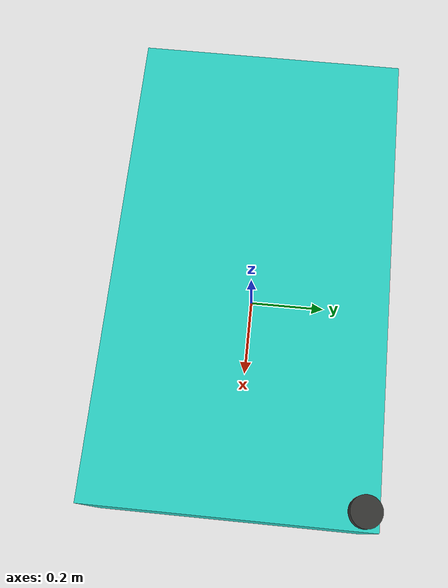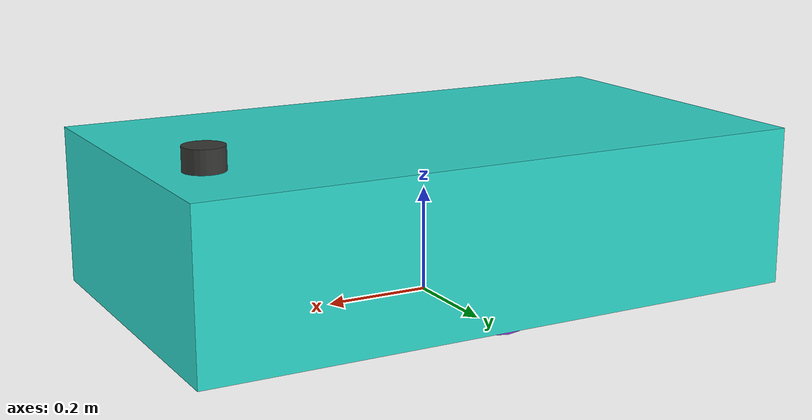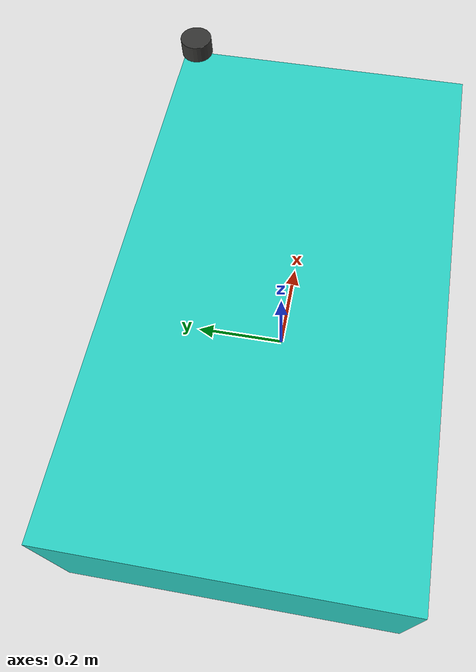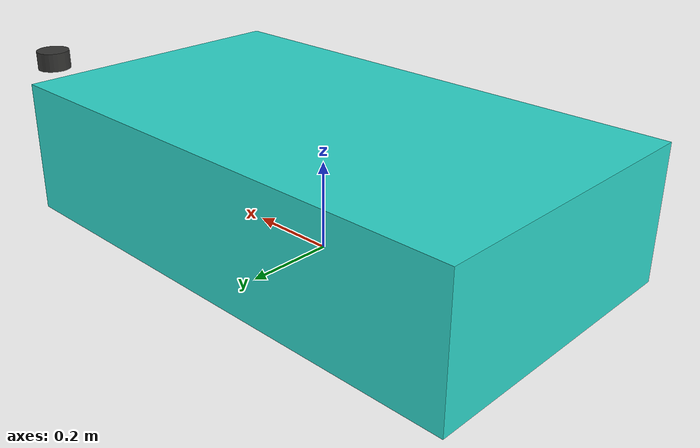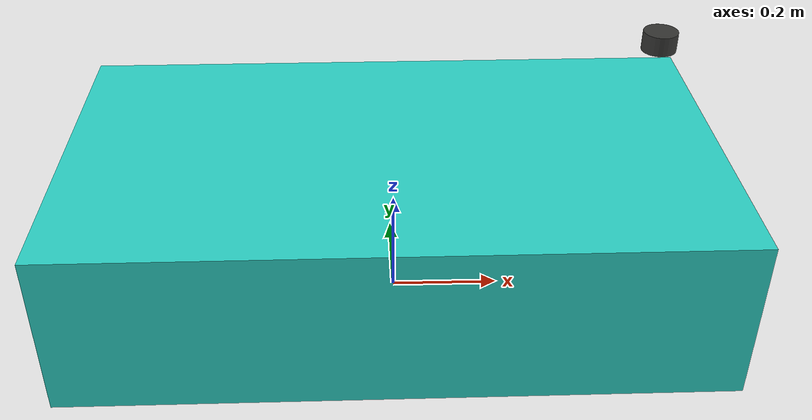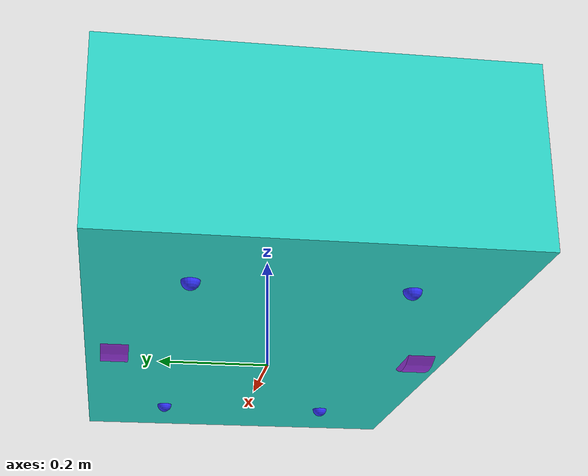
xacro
<?xml version="1.0"?>
<robot xmlns:xacro="http://www.ros.org/wiki/xacro" >

    <xacro:include filename="inertial_macros.xacro"/>

    <material name="white">
        <color rgba="1 1 1 1"/>
    </material>

    <material name="orange">
        <color rgba="1 0.3 0.1 1"/>
    </material>

    <material name="blue">
        <color rgba="0.2 0.2 1 1"/>
    </material>

    <material name="black">
        <color rgba="0 0 0 1"/>
    </material>

    <material name="red">
        <color rgba="1 0 0 1"/>
    </material>

    <material name="green">
        <color rgba="0 1 0 1"/>
    </material>

    <material name="vibrantorange">
        <color rgba="1.0 0.5 0 1"/>
    </material>

    <material name="xanhlo">
        <color rgba="0.18 0.85 0.8 1"/>
    </material>

    <material name="xanhdaquang">
        <color rgba="0.4 0.91 0.22 1"/>
    </material>

    <material name="tim">
        <color rgba="0.62 0.22 0.9 1"/>
    </material>

    <!-- BASE FOOTPRINT -->

    <link name="base_footprint">

    </link>

    <!-- BASE LINK -->

    <joint name="base_joint" type="fixed">
        <parent link="base_footprint"/>
        <child link="base_link"/>
        <origin xyz="0 0 0.09" rpy="0 0 0"/>
    </joint>

    <link name="base_link">
        <visual>
            <origin xyz="0 0 0.075"/>
            <geometry>
                <box size="1.170 0.665 0.3"/>
            </geometry>
            <material name="xanhlo"/>
        </visual>
        <collision>
            <origin xyz="0 0 0.075"/>
            <geometry>
                <box size="1.170 0.665 0.3"/>
            </geometry>
        </collision>

        <xacro:inertial_box mass="200" x="1.0" y="0.6" z="0.1">
            <origin xyz="0 0 0" rpy="0 0 0"/>
        </xacro:inertial_box>
    </link>

    <gazebo reference="base_link">
        <material>Gazebo/Green</material>
    </gazebo>

    <!-- LEFT WHEEL LINK -->

    <joint name="left_wheel_joint" type="continuous">
        <parent link="base_link"/>
        <child link="left_wheel"/>
        <origin xyz="0 0.28 0" rpy="-${pi/2} 0 0"/>
        <axis xyz="0 0 1"/>
    </joint>

    <link name="left_wheel">
        <visual>
            <origin xyz="0 0 0"/>
            <geometry>
                <cylinder radius="0.09" length="0.05"/>
            </geometry>
            <material name="tim"/>
        </visual>
        <collision>
            <origin xyz="0 0 0"/>
            <geometry>
                <cylinder radius="0.09" length="0.05"/>
            </geometry>
        </collision>

        <xacro:inertial_cylinder mass = "3" length="0.05" radius="0.09">
            <origin xyz="0 0 0" rpy="0 0 0"/>
        </xacro:inertial_cylinder>
    </link>

    <gazebo reference="left_wheel">
        <material>Gazebo/Purple</material>
    </gazebo>

    <!-- RIGHT WHEEL LINK -->

    <joint name="right_wheel_joint" type="continuous">
        <parent link="base_link"/>
        <child link="right_wheel"/>
        <origin xyz="0 -0.28 0" rpy="${pi/2} 0 0"/>
        <axis xyz="0 0 -1"/>
    </joint>

    <link name="right_wheel">
        <visual>
            <origin xyz="0 0 0"/>
            <geometry>
                <cylinder radius="0.09" length="0.05"/>
            </geometry>
            <material name="tim"/>
        </visual>
        <collision>
            <origin xyz="0 0 0"/>
            <geometry>
                <cylinder radius="0.09" length="0.05"/>
            </geometry>
        </collision>

        <xacro:inertial_cylinder mass = "3" length="0.05" radius="0.09">
            <origin xyz="0 0 0" rpy="0 0 0"/>
        </xacro:inertial_cylinder>
    </link>

    <gazebo reference="right_wheel">
        <material>Gazebo/Purple</material>
    </gazebo>

    <!-- CASTER WHEEL RIGHT BEHIND LINK -->

    <joint name="caster_wheel_right_behind_joint" type="fixed">
        <parent link="base_link"/>
        <child link="caster_wheel_right_behind"/>
        <origin xyz="-0.4 -0.17 -0.075" rpy="0 0 0"/>
    </joint>

    <link name="caster_wheel_right_behind">
        <visual>
            <origin xyz="0 0 0"/>
            <geometry>
                <sphere radius="0.015"/>
            </geometry>
            <material name="blue"/>
        </visual>
        <collision>
            <origin xyz="0 0 0"/>
            <geometry>
                <sphere radius="0.015"/>
            </geometry>
        </collision>

        <xacro:inertial_sphere mass="0.5" radius="0.015">
            <origin xyz="0 0 0" rpy="0 0 0"/>
        </xacro:inertial_sphere>
    </link>

    <gazebo reference="caster_wheel_right_behind">
        <material>Gazebo/Blue</material>
        <mu1 value="0.001"/>
        <mu2 value="0.001"/>
    </gazebo>

    <!-- CASTER WHEEL LEFT BEHIND LINK -->

    <joint name="caster_wheel_left_behind_joint" type="fixed">
        <parent link="base_link"/>
        <child link="caster_wheel_left_behind"/>
        <origin xyz="-0.4 0.17 -0.075" rpy="0 0 0"/>
    </joint>

    <link name="caster_wheel_left_behind">
        <visual>
            <origin xyz="0 0 0"/>
            <geometry>
                <sphere radius="0.015"/>
            </geometry>
            <material name="blue"/>
        </visual>
        <collision>
            <origin xyz="0 0 0"/>
            <geometry>
                <sphere radius="0.015"/>
            </geometry>
        </collision>

        <xacro:inertial_sphere mass="0.5" radius="0.015">
            <origin xyz="0 0 0" rpy="0 0 0"/>
        </xacro:inertial_sphere>
    </link>

    <gazebo reference="caster_wheel_left_behind">
        <material>Gazebo/Blue</material>
        <mu1 value="0.001"/>
        <mu2 value="0.001"/>
    </gazebo>

    <!-- CASTER WHEEL RIGHT FRONT LINK -->

    <joint name="caster_wheel_right_front_joint" type="fixed">
        <parent link="base_link"/>
        <child link="caster_wheel_right_front"/>
        <origin xyz="0.4 0.17 -0.075" rpy="0 0 0"/>
    </joint>

    <link name="caster_wheel_right_front">
        <visual>
            <origin xyz="0 0 0"/>
            <geometry>
                <sphere radius="0.015"/>
            </geometry>
            <material name="blue"/>
        </visual>
        <collision>
            <origin xyz="0 0 0"/>
            <geometry>
                <sphere radius="0.015"/>
            </geometry>
        </collision>

        <xacro:inertial_sphere mass="0.5" radius="0.015">
            <origin xyz="0 0 0" rpy="0 0 0"/>
        </xacro:inertial_sphere>
    </link>

    <gazebo reference="caster_wheel_right_front">
        <material>Gazebo/Blue</material>
        <mu1 value="0.001"/>
        <mu2 value="0.001"/>
    </gazebo>

    <!-- CASTER WHEEL LEFT FRONT LINK -->

    <joint name="caster_wheel_left_front_joint" type="fixed">
        <parent link="base_link"/>
        <child link="caster_wheel_left_front"/>
        <origin xyz="0.4 -0.17 -0.075" rpy="0 0 0"/>
    </joint>

    <link name="caster_wheel_left_front">
        <visual>
            <origin xyz="0 0 0"/>
            <geometry>
                <sphere radius="0.015"/>
            </geometry>
            <material name="blue"/>
        </visual>
        <collision>
            <origin xyz="0 0 0"/>
            <geometry>
                <sphere radius="0.015"/>
            </geometry>
        </collision>

        <xacro:inertial_sphere mass="0.5" radius="0.015">
            <origin xyz="0 0 0" rpy="0 0 0"/>
        </xacro:inertial_sphere>
    </link>

    <gazebo reference="caster_wheel_left_front">
        <material>Gazebo/Blue</material>
        <mu1 value="0.001"/>
        <mu2 value="0.001"/>
    </gazebo>

    <!-- LASER FRAME -->

    <joint name="laser_joint" type="fixed">
        <origin xyz="0.545 0.2925 0.283" rpy="0 0 ${pi}" />
        <parent link="base_link" />
        <child link="laser_frame" />
        <axis xyz="0 0 0" />
    </joint>

    <link name="laser_frame">
        <visual>
            <origin xyz="0 0 0" rpy="0 0 0"/>
            <geometry>
                <cylinder radius="0.035" length="0.04"/>
            </geometry>
            <material
                name="">
                <color
                rgba="0.211764705882353 0.211764705882353 0.203921568627451 1"/>
            </material>
        </visual>
        <collision>
            <origin xyz="0 0 0" rpy="0 0 0" />
            <geometry>
                <cylinder radius="0.035" length="0.04"/>
            </geometry>
        </collision>

        <xacro:inertial_cylinder mass="0.1" length="0.04" radius="0.035">
            <origin xyz="0 0 0" rpy="0 0 0"/>
        </xacro:inertial_cylinder>
    </link>

</robot>
